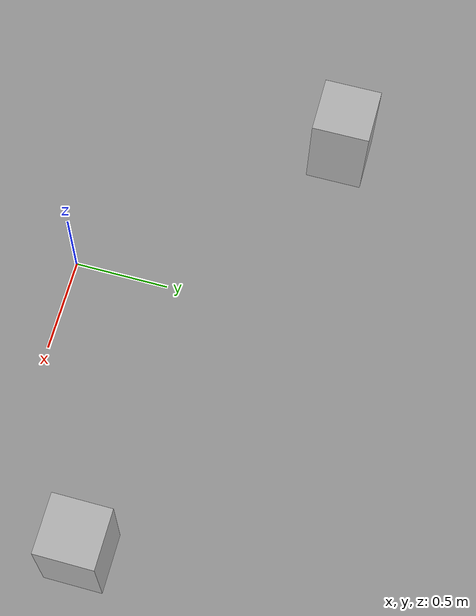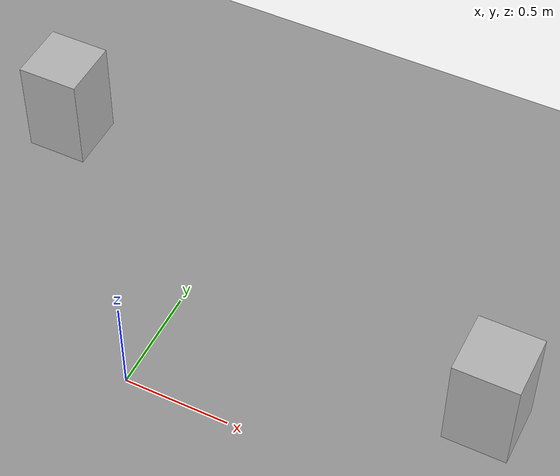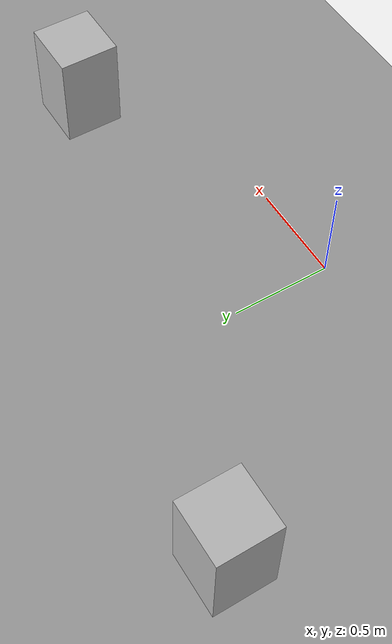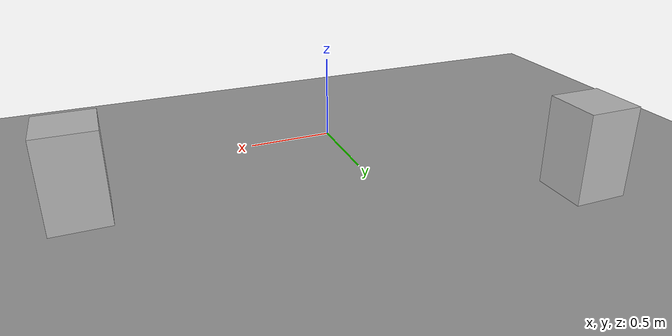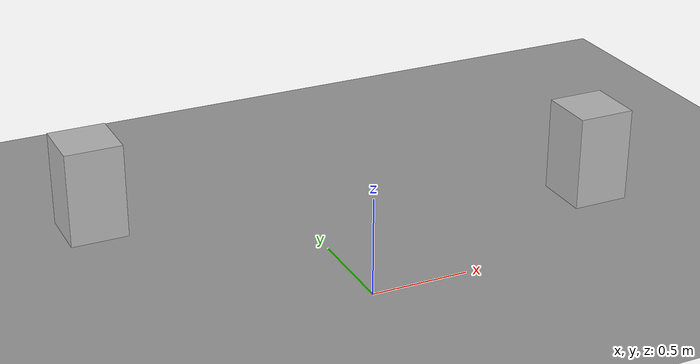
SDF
<?xml version="1.0"?>
<sdf version="1.9">
  <world name="amr_world">
    <physics name="1ms" type="ignored">
      <max_step_size>0.001</max_step_size>
      <real_time_factor>1.0</real_time_factor>
    </physics>
    <plugin filename="gz-sim-physics-system" name="gz::sim::systems::Physics"/>
    <plugin filename="gz-sim-user-commands-system" name="gz::sim::systems::UserCommands"/>
    <plugin filename="gz-sim-scene-broadcaster-system" name="gz::sim::systems::SceneBroadcaster"/>
    <plugin filename="gz-sim-sensors-system" name="gz::sim::systems::Sensors">
      <render_engine>ogre2</render_engine>
    </plugin>

    <light type="directional" name="sun">
      <cast_shadows>true</cast_shadows>
      <pose>0 0 10 0 0 0</pose>
      <diffuse>0.8 0.8 0.8 1</diffuse>
      <specular>0.2 0.2 0.2 1</specular>
      <direction>-0.5 0.1 -0.9</direction>
    </light>

    <model name="ground_plane">
      <static>true</static>
      <link name="link">
        <collision name="collision">
          <geometry><plane><normal>0 0 1</normal><size>20 20</size></plane></geometry>
        </collision>
        <visual name="visual">
          <geometry><plane><normal>0 0 1</normal><size>20 20</size></plane></geometry>
          <material>
            <ambient>0.6 0.6 0.6 1</ambient>
            <diffuse>0.6 0.6 0.6 1</diffuse>
          </material>
        </visual>
      </link>
    </model>

    <!-- A couple of boxes as obstacles, for testing SLAM/nav in sim -->
    <model name="box1">
      <static>true</static>
      <pose>1.5 0.5 0.25 0 0 0</pose>
      <link name="link">
        <collision name="collision"><geometry><box><size>0.3 0.3 0.5</size></box></geometry></collision>
        <visual name="visual"><geometry><box><size>0.3 0.3 0.5</size></box></geometry></visual>
      </link>
    </model>
    <model name="box2">
      <static>true</static>
      <pose>-1.0 1.2 0.25 0 0 0</pose>
      <link name="link">
        <collision name="collision"><geometry><box><size>0.3 0.3 0.5</size></box></geometry></collision>
        <visual name="visual"><geometry><box><size>0.3 0.3 0.5</size></box></geometry></visual>
      </link>
    </model>
  </world>
</sdf>
